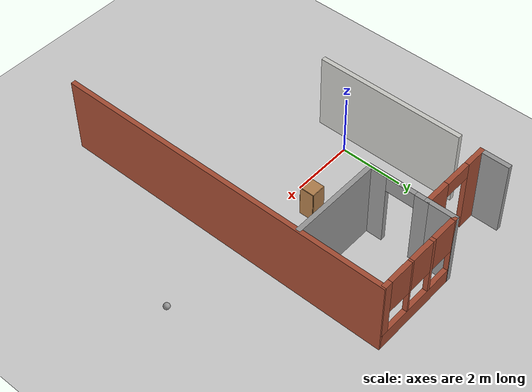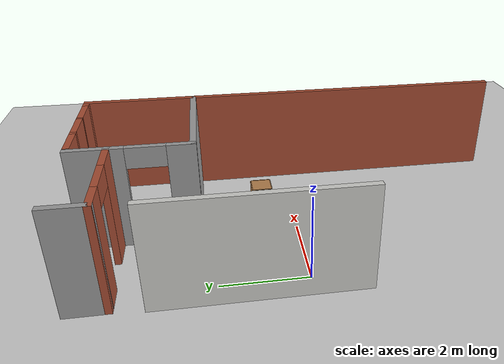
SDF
<sdf version="1.6">
 <world name="default">
  <model name="ground_plane">
   <static>1</static>
   <link name="link">
    <collision name="collision">
     <geometry><plane><normal>0 0 1</normal><size>100 100</size></plane></geometry>
     <surface><friction><ode><mu>100</mu><mu2>50</mu2></ode></friction></surface>
    </collision>
    <visual name="visual">
     <cast_shadows>0</cast_shadows>
     <geometry><plane><normal>0 0 1</normal><size>100 100</size></plane></geometry>
     <material>
      <script><uri>file://media/materials/scripts/gazebo.material</uri><name>Gazebo/Grey</name></script>
     </material>
    </visual>
   </link>
  </model>
  <model name="cabinet">
   <static>1</static>
   <link name="cabinet_bottom_plate">
    <inertial>
     <pose>0 0 -1 0 -0 0</pose>
     <inertia><ixx>2.05</ixx><ixy>0</ixy><ixz>0</ixz><iyy>2.05</iyy><iyz>0</iyz><izz>2.05</izz></inertia>
     <mass>25</mass>
    </inertial>
    <collision name="cabinet_bottom_plate_geom">
     <pose>0 0 0.01 0 -0 0</pose>
     <geometry><box><size>0.45 0.45 0.02</size></box></geometry>
    </collision>
    <visual name="cabinet_bottom_plate_geom_visual">
     <pose>0 0 0.01 0 -0 0</pose>
     <geometry><box><size>0.45 0.45 0.02</size></box></geometry>
     <material>
      <script><uri>file://media/materials/scripts/gazebo.material</uri><name>Gazebo/Wood</name></script>
     </material>
    </visual>
    <collision name="cabinet_bottom_plate_geom_cabinet_back_plate">
     <pose>0.235 0 0.51 0 -0 0</pose>
     <geometry><box><size>0.02 0.45 1.02</size></box></geometry>
    </collision>
    <visual name="cabinet_bottom_plate_geom_cabinet_back_plate_visual">
     <pose>0.235 0 0.51 0 -0 0</pose>
     <geometry><box><size>0.02 0.45 1.02</size></box></geometry>
     <material>
      <script><uri>file://media/materials/scripts/gazebo.material</uri><name>Gazebo/Wood</name></script>
     </material>
    </visual>
    <collision name="cabinet_bottom_plate_geom_cabinet_left_plate">
     <pose>0 0.235 0.51 0 -0 0</pose>
     <geometry><box><size>0.45 0.02 1.02</size></box></geometry>
    </collision>
    <visual name="cabinet_bottom_plate_geom_cabinet_left_plate_visual">
     <pose>0 0.235 0.51 0 -0 0</pose>
     <geometry><box><size>0.45 0.02 1.02</size></box></geometry>
     <material>
      <script><uri>file://media/materials/scripts/gazebo.material</uri><name>Gazebo/Wood</name></script>
     </material>
    </visual>
    <collision name="cabinet_bottom_plate_geom_cabinet_middle_plate">
     <pose>0 0 0.51 0 -0 0</pose>
     <geometry><box><size>0.45 0.45 0.02</size></box></geometry>
    </collision>
    <visual name="cabinet_bottom_plate_geom_cabinet_middle_plate_visual">
     <pose>0 0 0.51 0 -0 0</pose>
     <geometry><box><size>0.45 0.45 0.02</size></box></geometry>
     <material>
      <script><uri>file://media/materials/scripts/gazebo.material</uri><name>Gazebo/Wood</name></script>
     </material>
    </visual>
    <collision name="cabinet_bottom_plate_geom_cabinet_right_plate">
     <pose>0 -0.235 0.51 0 -0 0</pose>
     <geometry><box><size>0.45 0.02 1.02</size></box></geometry>
    </collision>
    <visual name="cabinet_bottom_plate_geom_cabinet_right_plate_visual">
     <pose>0 -0.235 0.51 0 -0 0</pose>
     <geometry><box><size>0.45 0.02 1.02</size></box></geometry>
     <material>
      <script><uri>file://media/materials/scripts/gazebo.material</uri><name>Gazebo/Wood</name></script>
     </material>
    </visual>
    <collision name="cabinet_bottom_plate_geom_cabinet_top_plate">
     <pose>0 0 1.01 0 -0 0</pose>
     <geometry><box><size>0.45 0.45 0.02</size></box></geometry>
    </collision>
    <visual name="cabinet_bottom_plate_geom_cabinet_top_plate_visual">
     <pose>0 0 1.01 0 -0 0</pose>
     <geometry><box><size>0.45 0.45 0.02</size></box></geometry>
     <material>
      <script><uri>file://media/materials/scripts/gazebo.material</uri><name>Gazebo/Wood</name></script>
     </material>
    </visual>
   </link>
   <pose>2.44272 0.813609 0 0 -0 0</pose>
  </model>
  <model name="project1_building">
   <link name="Wall_11">
    <pose>5.67767 0 0 0 -0 1.5708</pose>
    <inertial>
     <mass>1</mass>
     <inertia><ixx>1</ixx><ixy>0</ixy><ixz>0</ixz><iyy>1</iyy><iyz>0</iyz><izz>1</izz></inertia>
    </inertial>
    <visual name="Wall_11_Visual">
     <pose>0 0 1.25 0 -0 0</pose>
     <geometry><box><size>11 0.15 2.5</size></box></geometry>
     <material>
      <script><uri>file://media/materials/scripts/gazebo.material</uri><name>Gazebo/Bricks</name></script>
      <ambient>1 0 0 0</ambient>
      <shader type="pixel"><normal_map>__default__</normal_map></shader>
      <diffuse>1 0 0 0</diffuse>
      <specular>0 0.2 0.2 1</specular>
      <emissive>0 0 0 1</emissive>
     </material>
     <meta><layer>0</layer></meta>
    </visual>
    <collision name="Wall_11_Collision">
     <pose>0 0 1.25 0 -0 0</pose>
     <geometry><box><size>11 0.15 2.5</size></box></geometry>
     <surface>
      <friction>
       <ode><mu>1</mu><mu2>1</mu2><fdir1>0 0 0</fdir1><slip1>0</slip1><slip2>0</slip2></ode>
       <torsional>
        <coefficient>1</coefficient>
        <patch_radius>0</patch_radius>
        <surface_radius>0</surface_radius>
        <use_patch_radius>1</use_patch_radius>
        <ode><slip>0</slip></ode>
       </torsional>
      </friction>
      <bounce><restitution_coefficient>0</restitution_coefficient><threshold>1e+06</threshold></bounce>
      <contact>
       <collide_without_contact>0</collide_without_contact>
       <collide_without_contact_bitmask>1</collide_without_contact_bitmask>
       <collide_bitmask>1</collide_bitmask>
       <ode>
        <soft_cfm>0</soft_cfm>
        <soft_erp>0.2</soft_erp>
        <kp>1e+13</kp>
        <kd>1</kd>
        <max_vel>0.01</max_vel>
        <min_depth>0</min_depth>
       </ode>
       <bullet>
        <split_impulse>1</split_impulse>
        <split_impulse_penetration_threshold>-0.01</split_impulse_penetration_threshold>
        <soft_cfm>0</soft_cfm>
        <soft_erp>0.2</soft_erp>
        <kp>1e+13</kp>
        <kd>1</kd>
       </bullet>
      </contact>
     </surface>
    </collision>
   </link>
   <link name="Wall_13">
    <pose>2.77767 3.65 0 0 0 -1.5708</pose>
    <visual name="Wall_13_Visual_0">
     <pose>-0.777043 0 1.25 0 -0 0</pose>
     <geometry><box><size>0.445913 0.15 2.5</size></box></geometry>
     <material>
      <script><uri>file://media/materials/scripts/gazebo.material</uri><name>Gazebo/Grey</name></script>
      <ambient>1 1 1 1</ambient>
      <shader type="pixel"/>
      <diffuse>0.7 0.7 0.7 1</diffuse>
      <specular>0.01 0.01 0.01 1</specular>
      <emissive>0 0 0 1</emissive>
     </material>
     <meta><layer>0</layer></meta>
    </visual>
    <visual name="Wall_13_Visual_1">
     <pose>0.672957 0 1.25 0 -0 0</pose>
     <geometry><box><size>0.654087 0.15 2.5</size></box></geometry>
     <material>
      <script><uri>file://media/materials/scripts/gazebo.material</uri><name>Gazebo/Grey</name></script>
      <ambient>1 1 1 1</ambient>
      <shader type="pixel"/>
      <diffuse>0.7 0.7 0.7 1</diffuse>
      <specular>0.01 0.01 0.01 1</specular>
      <emissive>0 0 0 1</emissive>
     </material>
     <meta><layer>0</layer></meta>
    </visual>
    <visual name="Wall_13_Visual_2">
     <pose>-0.104087 0 2.25 0 -0 0</pose>
     <geometry><box><size>0.9 0.15 0.5</size></box></geometry>
     <material>
      <script><uri>file://media/materials/scripts/gazebo.material</uri><name>Gazebo/Grey</name></script>
      <ambient>1 1 1 1</ambient>
      <shader type="pixel"/>
      <diffuse>0.7 0.7 0.7 1</diffuse>
      <specular>0.01 0.01 0.01 1</specular>
      <emissive>0 0 0 1</emissive>
     </material>
     <meta><layer>0</layer></meta>
    </visual>
    <collision name="Wall_13_Collision_0">
     <pose>-0.777043 0 1.25 0 -0 0</pose>
     <geometry><box><size>0.445913 0.15 2.5</size></box></geometry>
     <surface>
      <friction>
       <ode><mu>1</mu><mu2>1</mu2><fdir1>0 0 0</fdir1><slip1>0</slip1><slip2>0</slip2></ode>
       <torsional>
        <coefficient>1</coefficient>
        <patch_radius>0</patch_radius>
        <surface_radius>0</surface_radius>
        <use_patch_radius>1</use_patch_radius>
        <ode><slip>0</slip></ode>
       </torsional>
      </friction>
      <bounce><restitution_coefficient>0</restitution_coefficient><threshold>1e+06</threshold></bounce>
      <contact>
       <collide_without_contact>0</collide_without_contact>
       <collide_without_contact_bitmask>1</collide_without_contact_bitmask>
       <collide_bitmask>1</collide_bitmask>
       <ode>
        <soft_cfm>0</soft_cfm>
        <soft_erp>0.2</soft_erp>
        <kp>1e+13</kp>
        <kd>1</kd>
        <max_vel>0.01</max_vel>
        <min_depth>0</min_depth>
       </ode>
       <bullet>
        <split_impulse>1</split_impulse>
        <split_impulse_penetration_threshold>-0.01</split_impulse_penetration_threshold>
        <soft_cfm>0</soft_cfm>
        <soft_erp>0.2</soft_erp>
        <kp>1e+13</kp>
        <kd>1</kd>
       </bullet>
      </contact>
     </surface>
    </collision>
    <collision name="Wall_13_Collision_1">
     <pose>0.672957 0 1.25 0 -0 0</pose>
     <geometry><box><size>0.654087 0.15 2.5</size></box></geometry>
     <surface>
      <friction>
       <ode><mu>1</mu><mu2>1</mu2><fdir1>0 0 0</fdir1><slip1>0</slip1><slip2>0</slip2></ode>
       <torsional>
        <coefficient>1</coefficient>
        <patch_radius>0</patch_radius>
        <surface_radius>0</surface_radius>
        <use_patch_radius>1</use_patch_radius>
        <ode><slip>0</slip></ode>
       </torsional>
      </friction>
      <bounce><restitution_coefficient>0</restitution_coefficient><threshold>1e+06</threshold></bounce>
      <contact>
       <collide_without_contact>0</collide_without_contact>
       <collide_without_contact_bitmask>1</collide_without_contact_bitmask>
       <collide_bitmask>1</collide_bitmask>
       <ode>
        <soft_cfm>0</soft_cfm>
        <soft_erp>0.2</soft_erp>
        <kp>1e+13</kp>
        <kd>1</kd>
        <max_vel>0.01</max_vel>
        <min_depth>0</min_depth>
       </ode>
       <bullet>
        <split_impulse>1</split_impulse>
        <split_impulse_penetration_threshold>-0.01</split_impulse_penetration_threshold>
        <soft_cfm>0</soft_cfm>
        <soft_erp>0.2</soft_erp>
        <kp>1e+13</kp>
        <kd>1</kd>
       </bullet>
      </contact>
     </surface>
    </collision>
    <collision name="Wall_13_Collision_2">
     <pose>-0.104087 0 2.25 0 -0 0</pose>
     <geometry><box><size>0.9 0.15 0.5</size></box></geometry>
     <surface>
      <friction>
       <ode><mu>1</mu><mu2>1</mu2><fdir1>0 0 0</fdir1><slip1>0</slip1><slip2>0</slip2></ode>
       <torsional>
        <coefficient>1</coefficient>
        <patch_radius>0</patch_radius>
        <surface_radius>0</surface_radius>
        <use_patch_radius>1</use_patch_radius>
        <ode><slip>0</slip></ode>
       </torsional>
      </friction>
      <bounce><restitution_coefficient>0</restitution_coefficient><threshold>1e+06</threshold></bounce>
      <contact>
       <collide_without_contact>0</collide_without_contact>
       <collide_without_contact_bitmask>1</collide_without_contact_bitmask>
       <collide_bitmask>1</collide_bitmask>
       <ode>
        <soft_cfm>0</soft_cfm>
        <soft_erp>0.2</soft_erp>
        <kp>1e+13</kp>
        <kd>1</kd>
        <max_vel>0.01</max_vel>
        <min_depth>0</min_depth>
       </ode>
       <bullet>
        <split_impulse>1</split_impulse>
        <split_impulse_penetration_threshold>-0.01</split_impulse_penetration_threshold>
        <soft_cfm>0</soft_cfm>
        <soft_erp>0.2</soft_erp>
        <kp>1e+13</kp>
        <kd>1</kd>
       </bullet>
      </contact>
     </surface>
    </collision>
   </link>
   <link name="Wall_14">
    <pose>4.20267 2.725 0 0 -0 0</pose>
    <visual name="Wall_14_Visual">
     <pose>0 0 1.25 0 -0 0</pose>
     <geometry><box><size>3 0.15 2.5</size></box></geometry>
     <material>
      <script><uri>file://media/materials/scripts/gazebo.material</uri><name>Gazebo/Grey</name></script>
      <ambient>1 1 1 1</ambient>
      <shader type="pixel"/>
      <diffuse>0.7 0.7 0.7 1</diffuse>
      <specular>0.01 0.01 0.01 1</specular>
      <emissive>0 0 0 1</emissive>
     </material>
     <meta><layer>0</layer></meta>
    </visual>
    <collision name="Wall_14_Collision">
     <pose>0 0 1.25 0 -0 0</pose>
     <geometry><box><size>3 0.15 2.5</size></box></geometry>
     <surface>
      <friction>
       <ode><mu>1</mu><mu2>1</mu2><fdir1>0 0 0</fdir1><slip1>0</slip1><slip2>0</slip2></ode>
       <torsional>
        <coefficient>1</coefficient>
        <patch_radius>0</patch_radius>
        <surface_radius>0</surface_radius>
        <use_patch_radius>1</use_patch_radius>
        <ode><slip>0</slip></ode>
       </torsional>
      </friction>
      <bounce><restitution_coefficient>0</restitution_coefficient><threshold>1e+06</threshold></bounce>
      <contact>
       <collide_without_contact>0</collide_without_contact>
       <collide_without_contact_bitmask>1</collide_without_contact_bitmask>
       <collide_bitmask>1</collide_bitmask>
       <ode>
        <soft_cfm>0</soft_cfm>
        <soft_erp>0.2</soft_erp>
        <kp>1e+13</kp>
        <kd>1</kd>
        <max_vel>0.01</max_vel>
        <min_depth>0</min_depth>
       </ode>
       <bullet>
        <split_impulse>1</split_impulse>
        <split_impulse_penetration_threshold>-0.01</split_impulse_penetration_threshold>
        <soft_cfm>0</soft_cfm>
        <soft_erp>0.2</soft_erp>
        <kp>1e+13</kp>
        <kd>1</kd>
       </bullet>
      </contact>
     </surface>
    </collision>
   </link>
   <link name="Wall_2">
    <pose>0.427674 5 0 0 0 -1.5708</pose>
    <visual name="Wall_2_Visual">
     <pose>0 0 1.25 0 -0 0</pose>
     <geometry><box><size>1 0.15 2.5</size></box></geometry>
     <material>
      <script><uri>file://media/materials/scripts/gazebo.material</uri><name>Gazebo/Grey</name></script>
      <ambient>1 1 1 1</ambient>
      <shader type="pixel"/>
      <diffuse>0.7 0.7 0.7 1</diffuse>
      <specular>0.01 0.01 0.01 1</specular>
      <emissive>0 0 0 1</emissive>
     </material>
     <meta><layer>0</layer></meta>
    </visual>
    <collision name="Wall_2_Collision">
     <pose>0 0 1.25 0 -0 0</pose>
     <geometry><box><size>1 0.15 2.5</size></box></geometry>
     <surface>
      <friction>
       <ode><mu>1</mu><mu2>1</mu2><fdir1>0 0 0</fdir1><slip1>0</slip1><slip2>0</slip2></ode>
       <torsional>
        <coefficient>1</coefficient>
        <patch_radius>0</patch_radius>
        <surface_radius>0</surface_radius>
        <use_patch_radius>1</use_patch_radius>
        <ode><slip>0</slip></ode>
       </torsional>
      </friction>
      <bounce><restitution_coefficient>0</restitution_coefficient><threshold>1e+06</threshold></bounce>
      <contact>
       <collide_without_contact>0</collide_without_contact>
       <collide_without_contact_bitmask>1</collide_without_contact_bitmask>
       <collide_bitmask>1</collide_bitmask>
       <ode>
        <soft_cfm>0</soft_cfm>
        <soft_erp>0.2</soft_erp>
        <kp>1e+13</kp>
        <kd>1</kd>
        <max_vel>0.01</max_vel>
        <min_depth>0</min_depth>
       </ode>
       <bullet>
        <split_impulse>1</split_impulse>
        <split_impulse_penetration_threshold>-0.01</split_impulse_penetration_threshold>
        <soft_cfm>0</soft_cfm>
        <soft_erp>0.2</soft_erp>
        <kp>1e+13</kp>
        <kd>1</kd>
       </bullet>
      </contact>
     </surface>
    </collision>
   </link>
   <link name="Wall_23">
    <pose>0.369934 1.49431 0 0 0 -1.5708</pose>
    <visual name="Wall_23_Visual">
     <pose>0 0 1.25 0 -0 0</pose>
     <geometry><box><size>4.75 0.15 2.5</size></box></geometry>
     <material>
      <script><uri>file://media/materials/scripts/gazebo.material</uri><name>Gazebo/CeilingTiled</name></script>
      <ambient>1 1 1 1</ambient>
      <shader type="pixel"/>
      <diffuse>1 1 1 1</diffuse>
      <specular>0 0 0 1</specular>
      <emissive>0 0 0 1</emissive>
     </material>
     <meta><layer>0</layer></meta>
    </visual>
    <collision name="Wall_23_Collision">
     <pose>0 0 1.25 0 -0 0</pose>
     <geometry><box><size>4.75 0.15 2.5</size></box></geometry>
     <surface>
      <friction>
       <ode><mu>1</mu><mu2>1</mu2><fdir1>0 0 0</fdir1><slip1>0</slip1><slip2>0</slip2></ode>
       <torsional>
        <coefficient>1</coefficient>
        <patch_radius>0</patch_radius>
        <surface_radius>0</surface_radius>
        <use_patch_radius>1</use_patch_radius>
        <ode><slip>0</slip></ode>
       </torsional>
      </friction>
      <bounce><restitution_coefficient>0</restitution_coefficient><threshold>1e+06</threshold></bounce>
      <contact>
       <collide_without_contact>0</collide_without_contact>
       <collide_without_contact_bitmask>1</collide_without_contact_bitmask>
       <collide_bitmask>1</collide_bitmask>
       <ode>
        <soft_cfm>0</soft_cfm>
        <soft_erp>0.2</soft_erp>
        <kp>1e+13</kp>
        <kd>1</kd>
        <max_vel>0.01</max_vel>
        <min_depth>0</min_depth>
       </ode>
       <bullet>
        <split_impulse>1</split_impulse>
        <split_impulse_penetration_threshold>-0.01</split_impulse_penetration_threshold>
        <soft_cfm>0</soft_cfm>
        <soft_erp>0.2</soft_erp>
        <kp>1e+13</kp>
        <kd>1</kd>
       </bullet>
      </contact>
     </surface>
    </collision>
   </link>
   <link name="Wall_3">
    <pose>1.60267 4.575 0 0 -0 0</pose>
    <visual name="Wall_3_Visual_0">
     <pose>-0.88717 0 1.25 0 -0 0</pose>
     <geometry><box><size>0.725659 0.15 2.5</size></box></geometry>
     <material>
      <script><uri>file://media/materials/scripts/gazebo.material</uri><name>Gazebo/Bricks</name></script>
      <ambient>1 1 1 1</ambient>
      <shader type="pixel"/>
      <diffuse>1 1 1 1</diffuse>
      <specular>0.2 0.2 0.2 1</specular>
      <emissive>0 0 0 1</emissive>
     </material>
     <meta><layer>0</layer></meta>
    </visual>
    <visual name="Wall_3_Visual_1">
     <pose>0.81283 0 1.25 0 -0 0</pose>
     <geometry><box><size>0.874341 0.15 2.5</size></box></geometry>
     <material>
      <script><uri>file://media/materials/scripts/gazebo.material</uri><name>Gazebo/Bricks</name></script>
      <ambient>1 1 1 1</ambient>
      <shader type="pixel"/>
      <diffuse>1 1 1 1</diffuse>
      <specular>0.2 0.2 0.2 1</specular>
      <emissive>0 0 0 1</emissive>
     </material>
     <meta><layer>0</layer></meta>
    </visual>
    <visual name="Wall_3_Visual_2">
     <pose>-0.074341 0 2.25 0 -0 0</pose>
     <geometry><box><size>0.9 0.15 0.5</size></box></geometry>
     <material>
      <script><uri>file://media/materials/scripts/gazebo.material</uri><name>Gazebo/Bricks</name></script>
      <ambient>1 1 1 1</ambient>
      <shader type="pixel"/>
      <diffuse>1 1 1 1</diffuse>
      <specular>0.2 0.2 0.2 1</specular>
      <emissive>0 0 0 1</emissive>
     </material>
     <meta><layer>0</layer></meta>
    </visual>
    <collision name="Wall_3_Collision_0">
     <pose>-0.88717 0 1.25 0 -0 0</pose>
     <geometry><box><size>0.725659 0.15 2.5</size></box></geometry>
     <surface>
      <friction>
       <ode><mu>1</mu><mu2>1</mu2><fdir1>0 0 0</fdir1><slip1>0</slip1><slip2>0</slip2></ode>
       <torsional>
        <coefficient>1</coefficient>
        <patch_radius>0</patch_radius>
        <surface_radius>0</surface_radius>
        <use_patch_radius>1</use_patch_radius>
        <ode><slip>0</slip></ode>
       </torsional>
      </friction>
      <bounce><restitution_coefficient>0</restitution_coefficient><threshold>1e+06</threshold></bounce>
      <contact>
       <collide_without_contact>0</collide_without_contact>
       <collide_without_contact_bitmask>1</collide_without_contact_bitmask>
       <collide_bitmask>1</collide_bitmask>
       <ode>
        <soft_cfm>0</soft_cfm>
        <soft_erp>0.2</soft_erp>
        <kp>1e+13</kp>
        <kd>1</kd>
        <max_vel>0.01</max_vel>
        <min_depth>0</min_depth>
       </ode>
       <bullet>
        <split_impulse>1</split_impulse>
        <split_impulse_penetration_threshold>-0.01</split_impulse_penetration_threshold>
        <soft_cfm>0</soft_cfm>
        <soft_erp>0.2</soft_erp>
        <kp>1e+13</kp>
        <kd>1</kd>
       </bullet>
      </contact>
     </surface>
    </collision>
    <collision name="Wall_3_Collision_1">
     <pose>0.81283 0 1.25 0 -0 0</pose>
     <geometry><box><size>0.874341 0.15 2.5</size></box></geometry>
     <surface>
      <friction>
       <ode><mu>1</mu><mu2>1</mu2><fdir1>0 0 0</fdir1><slip1>0</slip1><slip2>0</slip2></ode>
       <torsional>
        <coefficient>1</coefficient>
        <patch_radius>0</patch_radius>
        <surface_radius>0</surface_radius>
        <use_patch_radius>1</use_patch_radius>
        <ode><slip>0</slip></ode>
       </torsional>
      </friction>
      <bounce><restitution_coefficient>0</restitution_coefficient><threshold>1e+06</threshold></bounce>
      <contact>
       <collide_without_contact>0</collide_without_contact>
       <collide_without_contact_bitmask>1</collide_without_contact_bitmask>
       <collide_bitmask>1</collide_bitmask>
       <ode>
        <soft_cfm>0</soft_cfm>
        <soft_erp>0.2</soft_erp>
        <kp>1e+13</kp>
        <kd>1</kd>
        <max_vel>0.01</max_vel>
        <min_depth>0</min_depth>
       </ode>
       <bullet>
        <split_impulse>1</split_impulse>
        <split_impulse_penetration_threshold>-0.01</split_impulse_penetration_threshold>
        <soft_cfm>0</soft_cfm>
        <soft_erp>0.2</soft_erp>
        <kp>1e+13</kp>
        <kd>1</kd>
       </bullet>
      </contact>
     </surface>
    </collision>
    <collision name="Wall_3_Collision_2">
     <pose>-0.074341 0 2.25 0 -0 0</pose>
     <geometry><box><size>0.9 0.15 0.5</size></box></geometry>
     <surface>
      <friction>
       <ode><mu>1</mu><mu2>1</mu2><fdir1>0 0 0</fdir1><slip1>0</slip1><slip2>0</slip2></ode>
       <torsional>
        <coefficient>1</coefficient>
        <patch_radius>0</patch_radius>
        <surface_radius>0</surface_radius>
        <use_patch_radius>1</use_patch_radius>
        <ode><slip>0</slip></ode>
       </torsional>
      </friction>
      <bounce><restitution_coefficient>0</restitution_coefficient><threshold>1e+06</threshold></bounce>
      <contact>
       <collide_without_contact>0</collide_without_contact>
       <collide_without_contact_bitmask>1</collide_without_contact_bitmask>
       <collide_bitmask>1</collide_bitmask>
       <ode>
        <soft_cfm>0</soft_cfm>
        <soft_erp>0.2</soft_erp>
        <kp>1e+13</kp>
        <kd>1</kd>
        <max_vel>0.01</max_vel>
        <min_depth>0</min_depth>
       </ode>
       <bullet>
        <split_impulse>1</split_impulse>
        <split_impulse_penetration_threshold>-0.01</split_impulse_penetration_threshold>
        <soft_cfm>0</soft_cfm>
        <soft_erp>0.2</soft_erp>
        <kp>1e+13</kp>
        <kd>1</kd>
       </bullet>
      </contact>
     </surface>
    </collision>
   </link>
   <link name="Wall_4">
    <pose>2.77767 5 0 0 -0 1.5708</pose>
    <visual name="Wall_4_Visual">
     <pose>0 0 1.25 0 -0 0</pose>
     <geometry><box><size>1 0.15 2.5</size></box></geometry>
     <material>
      <script><uri>file://media/materials/scripts/gazebo.material</uri><name>Gazebo/Grey</name></script>
      <ambient>1 1 1 1</ambient>
      <shader type="pixel"/>
      <diffuse>0.7 0.7 0.7 1</diffuse>
      <specular>0.01 0.01 0.01 1</specular>
      <emissive>0 0 0 1</emissive>
     </material>
     <meta><layer>0</layer></meta>
    </visual>
    <collision name="Wall_4_Collision">
     <pose>0 0 1.25 0 -0 0</pose>
     <geometry><box><size>1 0.15 2.5</size></box></geometry>
     <surface>
      <friction>
       <ode><mu>1</mu><mu2>1</mu2><fdir1>0 0 0</fdir1><slip1>0</slip1><slip2>0</slip2></ode>
       <torsional>
        <coefficient>1</coefficient>
        <patch_radius>0</patch_radius>
        <surface_radius>0</surface_radius>
        <use_patch_radius>1</use_patch_radius>
        <ode><slip>0</slip></ode>
       </torsional>
      </friction>
      <bounce><restitution_coefficient>0</restitution_coefficient><threshold>1e+06</threshold></bounce>
      <contact>
       <collide_without_contact>0</collide_without_contact>
       <collide_without_contact_bitmask>1</collide_without_contact_bitmask>
       <collide_bitmask>1</collide_bitmask>
       <ode>
        <soft_cfm>0</soft_cfm>
        <soft_erp>0.2</soft_erp>
        <kp>1e+13</kp>
        <kd>1</kd>
        <max_vel>0.01</max_vel>
        <min_depth>0</min_depth>
       </ode>
       <bullet>
        <split_impulse>1</split_impulse>
        <split_impulse_penetration_threshold>-0.01</split_impulse_penetration_threshold>
        <soft_cfm>0</soft_cfm>
        <soft_erp>0.2</soft_erp>
        <kp>1e+13</kp>
        <kd>1</kd>
       </bullet>
      </contact>
     </surface>
    </collision>
   </link>
   <link name="Wall_5">
    <pose>4.20267 5.425 0 0 -0 0</pose>
    <visual name="Wall_5_Visual_0">
     <pose>-1.41223 0 1.25 0 -0 0</pose>
     <geometry><box><size>0.17554 0.15 2.5</size></box></geometry>
     <material>
      <script><uri>file://media/materials/scripts/gazebo.material</uri><name>Gazebo/Bricks</name></script>
      <ambient>1 1 1 1</ambient>
      <shader type="pixel"/>
      <diffuse>1 1 1 1</diffuse>
      <specular>0.2 0.2 0.2 1</specular>
      <emissive>0 0 0 1</emissive>
     </material>
     <meta><layer>0</layer></meta>
    </visual>
    <visual name="Wall_5_Visual_1">
     <pose>0.08777 0 0.25 0 -0 0</pose>
     <geometry><box><size>2.82446 0.15 0.5</size></box></geometry>
     <material>
      <script><uri>file://media/materials/scripts/gazebo.material</uri><name>Gazebo/Bricks</name></script>
      <ambient>1 1 1 1</ambient>
      <shader type="pixel"/>
      <diffuse>1 1 1 1</diffuse>
      <specular>0.2 0.2 0.2 1</specular>
      <emissive>0 0 0 1</emissive>
     </material>
     <meta><layer>0</layer></meta>
    </visual>
    <visual name="Wall_5_Visual_2">
     <pose>-0.471905 0 1.5 0 -0 0</pose>
     <geometry><box><size>0.105111 0.15 2</size></box></geometry>
     <material>
      <script><uri>file://media/materials/scripts/gazebo.material</uri><name>Gazebo/Bricks</name></script>
      <ambient>1 1 1 1</ambient>
      <shader type="pixel"/>
      <diffuse>1 1 1 1</diffuse>
      <specular>0.2 0.2 0.2 1</specular>
      <emissive>0 0 0 1</emissive>
     </material>
     <meta><layer>0</layer></meta>
    </visual>
    <visual name="Wall_5_Visual_3">
     <pose>0.413092 0 1.5 0 -0 0</pose>
     <geometry><box><size>0.064884 0.15 2</size></box></geometry>
     <material>
      <script><uri>file://media/materials/scripts/gazebo.material</uri><name>Gazebo/Bricks</name></script>
      <ambient>1 1 1 1</ambient>
      <shader type="pixel"/>
      <diffuse>1 1 1 1</diffuse>
      <specular>0.2 0.2 0.2 1</specular>
      <emissive>0 0 0 1</emissive>
     </material>
     <meta><layer>0</layer></meta>
    </visual>
    <visual name="Wall_5_Visual_5">
     <pose>-0.92446 0 1.9 0 -0 0</pose>
     <geometry><box><size>0.8 0.15 1.2</size></box></geometry>
     <material>
      <script><uri>file://media/materials/scripts/gazebo.material</uri><name>Gazebo/Bricks</name></script>
      <ambient>1 1 1 1</ambient>
      <shader type="pixel"/>
      <diffuse>1 1 1 1</diffuse>
      <specular>0.2 0.2 0.2 1</specular>
      <emissive>0 0 0 1</emissive>
     </material>
     <meta><layer>0</layer></meta>
    </visual>
    <visual name="Wall_5_Visual_4">
     <pose>1.37277 0 1.5 0 -0 0</pose>
     <geometry><box><size>0.254466 0.15 2</size></box></geometry>
     <material>
      <script><uri>file://media/materials/scripts/gazebo.material</uri><name>Gazebo/Bricks</name></script>
      <ambient>1 1 1 1</ambient>
      <shader type="pixel"/>
      <diffuse>1 1 1 1</diffuse>
      <specular>0.2 0.2 0.2 1</specular>
      <emissive>0 0 0 1</emissive>
     </material>
     <meta><layer>0</layer></meta>
    </visual>
    <visual name="Wall_5_Visual_6">
     <pose>-0.01935 0 1.9 0 -0 0</pose>
     <geometry><box><size>0.8 0.15 1.2</size></box></geometry>
     <material>
      <script><uri>file://media/materials/scripts/gazebo.material</uri><name>Gazebo/Bricks</name></script>
      <ambient>1 1 1 1</ambient>
      <shader type="pixel"/>
      <diffuse>1 1 1 1</diffuse>
      <specular>0.2 0.2 0.2 1</specular>
      <emissive>0 0 0 1</emissive>
     </material>
     <meta><layer>0</layer></meta>
    </visual>
    <visual name="Wall_5_Visual_7">
     <pose>0.845534 0 1.9 0 -0 0</pose>
     <geometry><box><size>0.8 0.15 1.2</size></box></geometry>
     <material>
      <script><uri>file://media/materials/scripts/gazebo.material</uri><name>Gazebo/Bricks</name></script>
      <ambient>1 1 1 1</ambient>
      <shader type="pixel"/>
      <diffuse>1 1 1 1</diffuse>
      <specular>0.2 0.2 0.2 1</specular>
      <emissive>0 0 0 1</emissive>
     </material>
     <meta><layer>0</layer></meta>
    </visual>
    <collision name="Wall_5_Collision_0">
     <pose>-1.41223 0 1.25 0 -0 0</pose>
     <geometry><box><size>0.17554 0.15 2.5</size></box></geometry>
     <surface>
      <friction>
       <ode><mu>1</mu><mu2>1</mu2><fdir1>0 0 0</fdir1><slip1>0</slip1><slip2>0</slip2></ode>
       <torsional>
        <coefficient>1</coefficient>
        <patch_radius>0</patch_radius>
        <surface_radius>0</surface_radius>
        <use_patch_radius>1</use_patch_radius>
        <ode><slip>0</slip></ode>
       </torsional>
      </friction>
      <bounce><restitution_coefficient>0</restitution_coefficient><threshold>1e+06</threshold></bounce>
      <contact>
       <collide_without_contact>0</collide_without_contact>
       <collide_without_contact_bitmask>1</collide_without_contact_bitmask>
       <collide_bitmask>1</collide_bitmask>
       <ode>
        <soft_cfm>0</soft_cfm>
        <soft_erp>0.2</soft_erp>
        <kp>1e+13</kp>
        <kd>1</kd>
        <max_vel>0.01</max_vel>
        <min_depth>0</min_depth>
       </ode>
       <bullet>
        <split_impulse>1</split_impulse>
        <split_impulse_penetration_threshold>-0.01</split_impulse_penetration_threshold>
        <soft_cfm>0</soft_cfm>
        <soft_erp>0.2</soft_erp>
        <kp>1e+13</kp>
        <kd>1</kd>
       </bullet>
      </contact>
     </surface>
    </collision>
    <collision name="Wall_5_Collision_2">
     <pose>-0.471905 0 1.5 0 -0 0</pose>
     <geometry><box><size>0.105111 0.15 2</size></box></geometry>
     <surface>
      <friction>
       <ode><mu>1</mu><mu2>1</mu2><fdir1>0 0 0</fdir1><slip1>0</slip1><slip2>0</slip2></ode>
       <torsional>
        <coefficient>1</coefficient>
        <patch_radius>0</patch_radius>
        <surface_radius>0</surface_radius>
        <use_patch_radius>1</use_patch_radius>
        <ode><slip>0</slip></ode>
       </torsional>
      </friction>
      <bounce><restitution_coefficient>0</restitution_coefficient><threshold>1e+06</threshold></bounce>
      <contact>
       <collide_without_contact>0</collide_without_contact>
       <collide_without_contact_bitmask>1</collide_without_contact_bitmask>
       <collide_bitmask>1</collide_bitmask>
       <ode>
        <soft_cfm>0</soft_cfm>
        <soft_erp>0.2</soft_erp>
        <kp>1e+13</kp>
        <kd>1</kd>
        <max_vel>0.01</max_vel>
        <min_depth>0</min_depth>
       </ode>
       <bullet>
        <split_impulse>1</split_impulse>
        <split_impulse_penetration_threshold>-0.01</split_impulse_penetration_threshold>
        <soft_cfm>0</soft_cfm>
        <soft_erp>0.2</soft_erp>
        <kp>1e+13</kp>
        <kd>1</kd>
       </bullet>
      </contact>
     </surface>
    </collision>
    <collision name="Wall_5_Collision_1">
     <pose>0.08777 0 0.25 0 -0 0</pose>
     <geometry><box><size>2.82446 0.15 0.5</size></box></geometry>
     <surface>
      <friction>
       <ode><mu>1</mu><mu2>1</mu2><fdir1>0 0 0</fdir1><slip1>0</slip1><slip2>0</slip2></ode>
       <torsional>
        <coefficient>1</coefficient>
        <patch_radius>0</patch_radius>
        <surface_radius>0</surface_radius>
        <use_patch_radius>1</use_patch_radius>
        <ode><slip>0</slip></ode>
       </torsional>
      </friction>
      <bounce><restitution_coefficient>0</restitution_coefficient><threshold>1e+06</threshold></bounce>
      <contact>
       <collide_without_contact>0</collide_without_contact>
       <collide_without_contact_bitmask>1</collide_without_contact_bitmask>
       <collide_bitmask>1</collide_bitmask>
       <ode>
        <soft_cfm>0</soft_cfm>
        <soft_erp>0.2</soft_erp>
        <kp>1e+13</kp>
        <kd>1</kd>
        <max_vel>0.01</max_vel>
        <min_depth>0</min_depth>
       </ode>
       <bullet>
        <split_impulse>1</split_impulse>
        <split_impulse_penetration_threshold>-0.01</split_impulse_penetration_threshold>
        <soft_cfm>0</soft_cfm>
        <soft_erp>0.2</soft_erp>
        <kp>1e+13</kp>
        <kd>1</kd>
       </bullet>
      </contact>
     </surface>
    </collision>
    <collision name="Wall_5_Collision_3">
     <pose>0.413092 0 1.5 0 -0 0</pose>
     <geometry><box><size>0.064884 0.15 2</size></box></geometry>
     <surface>
      <friction>
       <ode><mu>1</mu><mu2>1</mu2><fdir1>0 0 0</fdir1><slip1>0</slip1><slip2>0</slip2></ode>
       <torsional>
        <coefficient>1</coefficient>
        <patch_radius>0</patch_radius>
        <surface_radius>0</surface_radius>
        <use_patch_radius>1</use_patch_radius>
        <ode><slip>0</slip></ode>
       </torsional>
      </friction>
      <bounce><restitution_coefficient>0</restitution_coefficient><threshold>1e+06</threshold></bounce>
      <contact>
       <collide_without_contact>0</collide_without_contact>
       <collide_without_contact_bitmask>1</collide_without_contact_bitmask>
       <collide_bitmask>1</collide_bitmask>
       <ode>
        <soft_cfm>0</soft_cfm>
        <soft_erp>0.2</soft_erp>
        <kp>1e+13</kp>
        <kd>1</kd>
        <max_vel>0.01</max_vel>
        <min_depth>0</min_depth>
       </ode>
       <bullet>
        <split_impulse>1</split_impulse>
        <split_impulse_penetration_threshold>-0.01</split_impulse_penetration_threshold>
        <soft_cfm>0</soft_cfm>
        <soft_erp>0.2</soft_erp>
        <kp>1e+13</kp>
        <kd>1</kd>
       </bullet>
      </contact>
     </surface>
    </collision>
    <collision name="Wall_5_Collision_4">
     <pose>1.37277 0 1.5 0 -0 0</pose>
     <geometry><box><size>0.254466 0.15 2</size></box></geometry>
     <surface>
      <friction>
       <ode><mu>1</mu><mu2>1</mu2><fdir1>0 0 0</fdir1><slip1>0</slip1><slip2>0</slip2></ode>
       <torsional>
        <coefficient>1</coefficient>
        <patch_radius>0</patch_radius>
        <surface_radius>0</surface_radius>
        <use_patch_radius>1</use_patch_radius>
        <ode><slip>0</slip></ode>
       </torsional>
      </friction>
      <bounce><restitution_coefficient>0</restitution_coefficient><threshold>1e+06</threshold></bounce>
      <contact>
       <collide_without_contact>0</collide_without_contact>
       <collide_without_contact_bitmask>1</collide_without_contact_bitmask>
       <collide_bitmask>1</collide_bitmask>
       <ode>
        <soft_cfm>0</soft_cfm>
        <soft_erp>0.2</soft_erp>
        <kp>1e+13</kp>
        <kd>1</kd>
        <max_vel>0.01</max_vel>
        <min_depth>0</min_depth>
       </ode>
       <bullet>
        <split_impulse>1</split_impulse>
        <split_impulse_penetration_threshold>-0.01</split_impulse_penetration_threshold>
        <soft_cfm>0</soft_cfm>
        <soft_erp>0.2</soft_erp>
        <kp>1e+13</kp>
        <kd>1</kd>
       </bullet>
      </contact>
     </surface>
    </collision>
    <collision name="Wall_5_Collision_5">
     <pose>-0.92446 0 1.9 0 -0 0</pose>
     <geometry><box><size>0.8 0.15 1.2</size></box></geometry>
     <surface>
      <friction>
       <ode><mu>1</mu><mu2>1</mu2><fdir1>0 0 0</fdir1><slip1>0</slip1><slip2>0</slip2></ode>
       <torsional>
        <coefficient>1</coefficient>
        <patch_radius>0</patch_radius>
        <surface_radius>0</surface_radius>
        <use_patch_radius>1</use_patch_radius>
        <ode><slip>0</slip></ode>
       </torsional>
      </friction>
      <bounce><restitution_coefficient>0</restitution_coefficient><threshold>1e+06</threshold></bounce>
      <contact>
       <collide_without_contact>0</collide_without_contact>
       <collide_without_contact_bitmask>1</collide_without_contact_bitmask>
       <collide_bitmask>1</collide_bitmask>
       <ode>
        <soft_cfm>0</soft_cfm>
        <soft_erp>0.2</soft_erp>
        <kp>1e+13</kp>
        <kd>1</kd>
        <max_vel>0.01</max_vel>
        <min_depth>0</min_depth>
       </ode>
       <bullet>
        <split_impulse>1</split_impulse>
        <split_impulse_penetration_threshold>-0.01</split_impulse_penetration_threshold>
        <soft_cfm>0</soft_cfm>
        <soft_erp>0.2</soft_erp>
        <kp>1e+13</kp>
        <kd>1</kd>
       </bullet>
      </contact>
     </surface>
    </collision>
    <collision name="Wall_5_Collision_7">
     <pose>0.845534 0 1.9 0 -0 0</pose>
     <geometry><box><size>0.8 0.15 1.2</size></box></geometry>
     <surface>
      <friction>
       <ode><mu>1</mu><mu2>1</mu2><fdir1>0 0 0</fdir1><slip1>0</slip1><slip2>0</slip2></ode>
       <torsional>
        <coefficient>1</coefficient>
        <patch_radius>0</patch_radius>
        <surface_radius>0</surface_radius>
        <use_patch_radius>1</use_patch_radius>
        <ode><slip>0</slip></ode>
       </torsional>
      </friction>
      <bounce><restitution_coefficient>0</restitution_coefficient><threshold>1e+06</threshold></bounce>
      <contact>
       <collide_without_contact>0</collide_without_contact>
       <collide_without_contact_bitmask>1</collide_without_contact_bitmask>
       <collide_bitmask>1</collide_bitmask>
       <ode>
        <soft_cfm>0</soft_cfm>
        <soft_erp>0.2</soft_erp>
        <kp>1e+13</kp>
        <kd>1</kd>
        <max_vel>0.01</max_vel>
        <min_depth>0</min_depth>
       </ode>
       <bullet>
        <split_impulse>1</split_impulse>
        <split_impulse_penetration_threshold>-0.01</split_impulse_penetration_threshold>
        <soft_cfm>0</soft_cfm>
        <soft_erp>0.2</soft_erp>
        <kp>1e+13</kp>
        <kd>1</kd>
       </bullet>
      </contact>
     </surface>
    </collision>
    <collision name="Wall_5_Collision_6">
     <pose>-0.01935 0 1.9 0 -0 0</pose>
     <geometry><box><size>0.8 0.15 1.2</size></box></geometry>
     <surface>
      <friction>
       <ode><mu>1</mu><mu2>1</mu2><fdir1>0 0 0</fdir1><slip1>0</slip1><slip2>0</slip2></ode>
       <torsional>
        <coefficient>1</coefficient>
        <patch_radius>0</patch_radius>
        <surface_radius>0</surface_radius>
        <use_patch_radius>1</use_patch_radius>
        <ode><slip>0</slip></ode>
       </torsional>
      </friction>
      <bounce><restitution_coefficient>0</restitution_coefficient><threshold>1e+06</threshold></bounce>
      <contact>
       <collide_without_contact>0</collide_without_contact>
       <collide_without_contact_bitmask>1</collide_without_contact_bitmask>
       <collide_bitmask>1</collide_bitmask>
       <ode>
        <soft_cfm>0</soft_cfm>
        <soft_erp>0.2</soft_erp>
        <kp>1e+13</kp>
        <kd>1</kd>
        <max_vel>0.01</max_vel>
        <min_depth>0</min_depth>
       </ode>
       <bullet>
        <split_impulse>1</split_impulse>
        <split_impulse_penetration_threshold>-0.01</split_impulse_penetration_threshold>
        <soft_cfm>0</soft_cfm>
        <soft_erp>0.2</soft_erp>
        <kp>1e+13</kp>
        <kd>1</kd>
       </bullet>
      </contact>
     </surface>
    </collision>
   </link>
   <static>1</static>
   <pose>-0.860177 -0.394811 0 0 -0 0</pose>
  </model>
  <model name="my_ball">
   <link name="link_0">
    <inertial>
     <mass>1</mass>
     <inertia><ixx>0.1</ixx><ixy>0</ixy><ixz>0</ixz><iyy>0.1</iyy><iyz>0</iyz><izz>0.1</izz></inertia>
    </inertial>
    <visual name="visual">
     <geometry><sphere><radius>0.1</radius></sphere></geometry>
     <material>
      <lighting>1</lighting>
      <script><uri>file://media/materials/scripts/gazebo.material</uri><name>Gazebo/Grey</name></script>
      <shader type="pixel"><normal_map>__default__</normal_map></shader>
      <ambient>1 1 1 0.9</ambient>
      <diffuse>1 1 1 1</diffuse>
      <specular>1 1 1 1</specular>
      <emissive>1 1 1 1</emissive>
     </material>
    </visual>
    <collision name="collision">
     <geometry><sphere><radius>0.1</radius></sphere></geometry>
     <surface>
      <friction>
       <ode><mu>1</mu><mu2>1</mu2><fdir1>0 0 0</fdir1><slip1>0</slip1><slip2>0</slip2></ode>
       <torsional>
        <coefficient>1</coefficient>
        <patch_radius>0</patch_radius>
        <surface_radius>0</surface_radius>
        <use_patch_radius>1</use_patch_radius>
        <ode><slip>0</slip></ode>
       </torsional>
      </friction>
      <bounce><restitution_coefficient>0</restitution_coefficient><threshold>1e+06</threshold></bounce>
      <contact>
       <collide_without_contact>0</collide_without_contact>
       <collide_without_contact_bitmask>1</collide_without_contact_bitmask>
       <collide_bitmask>1</collide_bitmask>
       <ode>
        <soft_cfm>0</soft_cfm>
        <soft_erp>0.2</soft_erp>
        <kp>1e+13</kp>
        <kd>1</kd>
        <max_vel>0.01</max_vel>
        <min_depth>0</min_depth>
       </ode>
       <bullet>
        <split_impulse>1</split_impulse>
        <split_impulse_penetration_threshold>-0.01</split_impulse_penetration_threshold>
        <soft_cfm>0</soft_cfm>
        <soft_erp>0.2</soft_erp>
        <kp>1e+13</kp>
        <kd>1</kd>
       </bullet>
      </contact>
     </surface>
    </collision>
   </link>
   <static>0</static>
   <pose>7.47231 0.122336 0.1 0 -0 0</pose>
  </model>
 </world>
</sdf>
